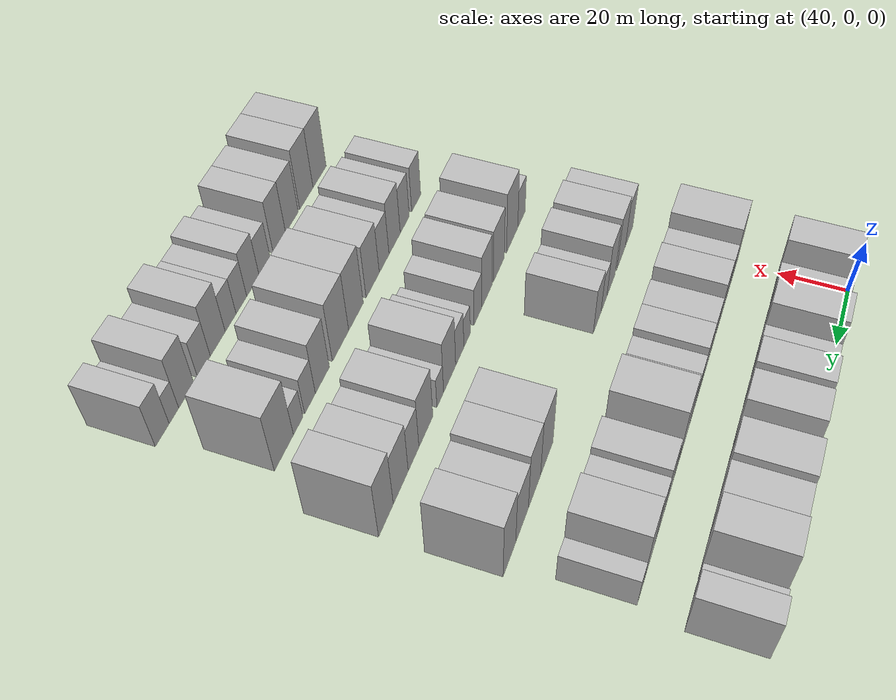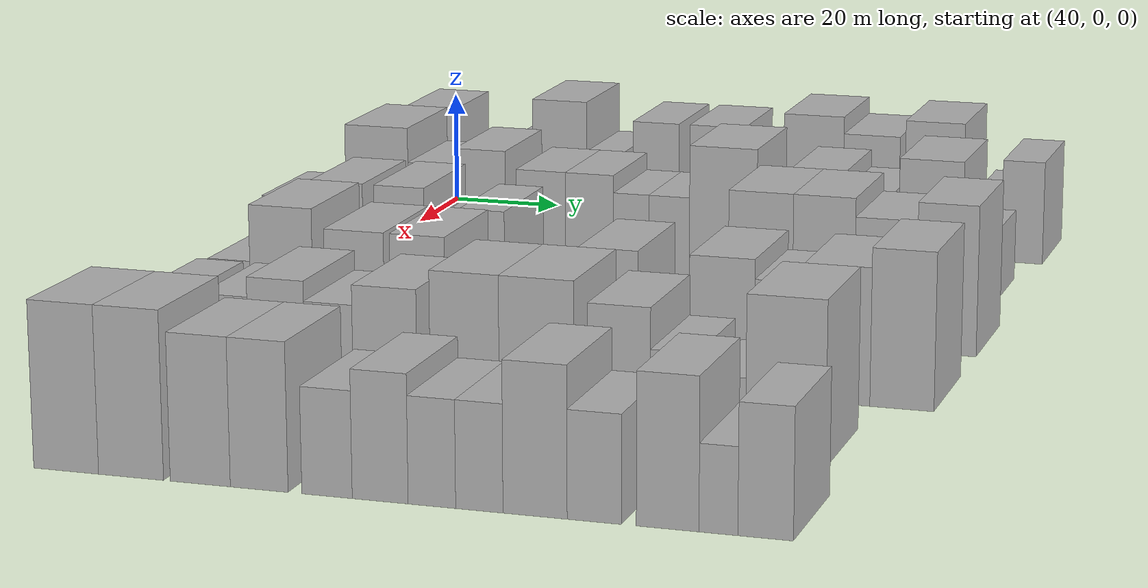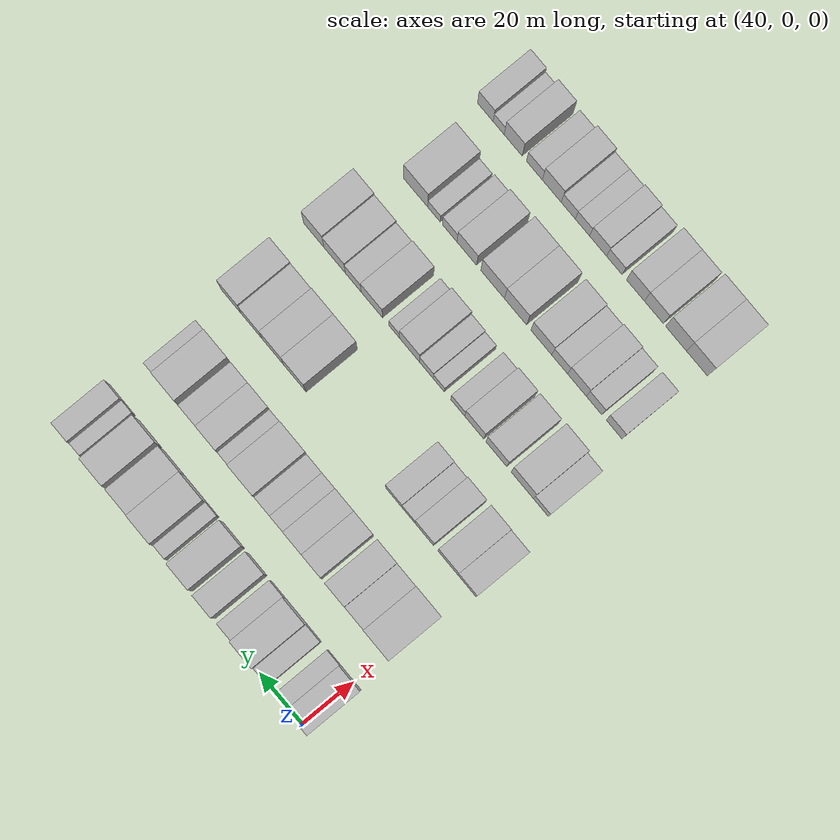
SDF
<sdf version="1.6">
 <world name="default">
  <model name="building_61">
   <static>1</static>
   <pose>50.0000 1.5349 0 0.000000 0.000000 0.000000</pose>
   <link name="link">
    <pose>0 0 10.50 0 0 0</pose>
    <collision name="collision"><geometry><box><size>20.0000 9.6845 21.0000</size></box></geometry></collision>
    <visual name="visual">
     <cast_shadows>0</cast_shadows>
     <geometry><box><size>20.0000 9.6845 21.0000</size></box></geometry>
     <material>
      <script>
       <uri>model://HANNAS_wall/materials/scripts</uri>
       <uri>model://HANNAS_wall/materials/textures</uri>
       <name>vrc/HANNAS_wall</name>
      </script>
     </material>
    </visual>
   </link>
  </model>
  <model name="building_62">
   <static>1</static>
   <pose>50.0000 9.2996 0 0.000000 0.000000 0.000000</pose>
   <link name="link">
    <pose>0 0 6.00 0 0 0</pose>
    <collision name="collision"><geometry><box><size>20.0000 5.8450 12.0000</size></box></geometry></collision>
    <visual name="visual">
     <cast_shadows>0</cast_shadows>
     <geometry><box><size>20.0000 5.8450 12.0000</size></box></geometry>
     <material>
      <script>
       <uri>model://HANNAS_wall/materials/scripts</uri>
       <uri>model://HANNAS_wall/materials/textures</uri>
       <name>vrc/HANNAS_wall</name>
      </script>
     </material>
    </visual>
   </link>
  </model>
  <model name="building_63">
   <static>1</static>
   <pose>50.0000 18.5342 0 0.000000 0.000000 0.000000</pose>
   <link name="link">
    <pose>0 0 7.50 0 0 0</pose>
    <collision name="collision"><geometry><box><size>20.0000 6.6242 15.0000</size></box></geometry></collision>
    <visual name="visual">
     <cast_shadows>0</cast_shadows>
     <geometry><box><size>20.0000 6.6242 15.0000</size></box></geometry>
     <material>
      <script>
       <uri>model://HANNAS_wall/materials/scripts</uri>
       <uri>model://HANNAS_wall/materials/textures</uri>
       <name>vrc/HANNAS_wall</name>
      </script>
     </material>
    </visual>
   </link>
  </model>
  <model name="building_64">
   <static>1</static>
   <pose>50.0000 26.9596 0 0.000000 0.000000 0.000000</pose>
   <link name="link">
    <pose>0 0 12.00 0 0 0</pose>
    <collision name="collision"><geometry><box><size>20.0000 10.2266 24.0000</size></box></geometry></collision>
    <visual name="visual">
     <cast_shadows>0</cast_shadows>
     <geometry><box><size>20.0000 10.2266 24.0000</size></box></geometry>
     <material>
      <script>
       <uri>model://HANNAS_wall/materials/scripts</uri>
       <uri>model://HANNAS_wall/materials/textures</uri>
       <name>vrc/HANNAS_wall</name>
      </script>
     </material>
    </visual>
   </link>
  </model>
  <model name="building_65">
   <static>1</static>
   <pose>50.0000 35.4336 0 0.000000 0.000000 0.000000</pose>
   <link name="link">
    <pose>0 0 7.50 0 0 0</pose>
    <collision name="collision"><geometry><box><size>20.0000 6.7215 15.0000</size></box></geometry></collision>
    <visual name="visual">
     <cast_shadows>0</cast_shadows>
     <geometry><box><size>20.0000 6.7215 15.0000</size></box></geometry>
     <material>
      <script>
       <uri>model://HANNAS_wall/materials/scripts</uri>
       <uri>model://HANNAS_wall/materials/textures</uri>
       <name>vrc/HANNAS_wall</name>
      </script>
     </material>
    </visual>
   </link>
  </model>
  <model name="building_66">
   <static>1</static>
   <pose>50.0000 45.1066 0 0.000000 0.000000 0.000000</pose>
   <link name="link">
    <pose>0 0 10.50 0 0 0</pose>
    <collision name="collision"><geometry><box><size>20.0000 8.6244 21.0000</size></box></geometry></collision>
    <visual name="visual">
     <cast_shadows>0</cast_shadows>
     <geometry><box><size>20.0000 8.6244 21.0000</size></box></geometry>
     <material>
      <script>
       <uri>model://HANNAS_wall/materials/scripts</uri>
       <uri>model://HANNAS_wall/materials/textures</uri>
       <name>vrc/HANNAS_wall</name>
      </script>
     </material>
    </visual>
   </link>
  </model>
  <model name="building_67">
   <static>1</static>
   <pose>50.0000 56.4293 0 0.000000 0.000000 0.000000</pose>
   <link name="link">
    <pose>0 0 10.50 0 0 0</pose>
    <collision name="collision"><geometry><box><size>20.0000 10.0211 21.0000</size></box></geometry></collision>
    <visual name="visual">
     <cast_shadows>0</cast_shadows>
     <geometry><box><size>20.0000 10.0211 21.0000</size></box></geometry>
     <material>
      <script>
       <uri>model://HANNAS_wall/materials/scripts</uri>
       <uri>model://HANNAS_wall/materials/textures</uri>
       <name>vrc/HANNAS_wall</name>
      </script>
     </material>
    </visual>
   </link>
  </model>
  <model name="building_68">
   <static>1</static>
   <pose>50.0000 66.0539 0 0.000000 0.000000 0.000000</pose>
   <link name="link">
    <pose>0 0 6.00 0 0 0</pose>
    <collision name="collision"><geometry><box><size>20.0000 5.2282 12.0000</size></box></geometry></collision>
    <visual name="visual">
     <cast_shadows>0</cast_shadows>
     <geometry><box><size>20.0000 5.2282 12.0000</size></box></geometry>
     <material>
      <script>
       <uri>model://HANNAS_wall/materials/scripts</uri>
       <uri>model://HANNAS_wall/materials/textures</uri>
       <name>vrc/HANNAS_wall</name>
      </script>
     </material>
    </visual>
   </link>
  </model>
  <model name="building_69">
   <static>1</static>
   <pose>50.0000 74.1038 0 0.000000 0.000000 0.000000</pose>
   <link name="link">
    <pose>0 0 12.00 0 0 0</pose>
    <collision name="collision"><geometry><box><size>20.0000 10.8714 24.0000</size></box></geometry></collision>
    <visual name="visual">
     <cast_shadows>0</cast_shadows>
     <geometry><box><size>20.0000 10.8714 24.0000</size></box></geometry>
     <material>
      <script>
       <uri>model://HANNAS_wall/materials/scripts</uri>
       <uri>model://HANNAS_wall/materials/textures</uri>
       <name>vrc/HANNAS_wall</name>
      </script>
     </material>
    </visual>
   </link>
  </model>
  <model name="building_70">
   <static>1</static>
   <pose>50.0000 84.5652 0 0.000000 0.000000 0.000000</pose>
   <link name="link">
    <pose>0 0 10.50 0 0 0</pose>
    <collision name="collision"><geometry><box><size>20.0000 10.0514 21.0000</size></box></geometry></collision>
    <visual name="visual">
     <cast_shadows>0</cast_shadows>
     <geometry><box><size>20.0000 10.0514 21.0000</size></box></geometry>
     <material>
      <script>
       <uri>model://HANNAS_wall/materials/scripts</uri>
       <uri>model://HANNAS_wall/materials/textures</uri>
       <name>vrc/HANNAS_wall</name>
      </script>
     </material>
    </visual>
   </link>
  </model>
  <model name="building_71">
   <static>1</static>
   <pose>50.0000 95.8298 0 0.000000 0.000000 0.000000</pose>
   <link name="link">
    <pose>0 0 12.00 0 0 0</pose>
    <collision name="collision"><geometry><box><size>20.0000 10.4778 24.0000</size></box></geometry></collision>
    <visual name="visual">
     <cast_shadows>0</cast_shadows>
     <geometry><box><size>20.0000 10.4778 24.0000</size></box></geometry>
     <material>
      <script>
       <uri>model://HANNAS_wall/materials/scripts</uri>
       <uri>model://HANNAS_wall/materials/textures</uri>
       <name>vrc/HANNAS_wall</name>
      </script>
     </material>
    </visual>
   </link>
  </model>
  <model name="building_72">
   <static>1</static>
   <pose>50.0000 105.4880 0 0.000000 0.000000 0.000000</pose>
   <link name="link">
    <pose>0 0 6.00 0 0 0</pose>
    <collision name="collision"><geometry><box><size>20.0000 4.8387 12.0000</size></box></geometry></collision>
    <visual name="visual">
     <cast_shadows>0</cast_shadows>
     <geometry><box><size>20.0000 4.8387 12.0000</size></box></geometry>
     <material>
      <script>
       <uri>model://HANNAS_wall/materials/scripts</uri>
       <uri>model://HANNAS_wall/materials/textures</uri>
       <name>vrc/HANNAS_wall</name>
      </script>
     </material>
    </visual>
   </link>
  </model>
  <model name="building_73">
   <static>1</static>
   <pose>50.0000 111.5467 0 0.000000 0.000000 0.000000</pose>
   <link name="link">
    <pose>0 0 9.00 0 0 0</pose>
    <collision name="collision"><geometry><box><size>20.0000 7.2786 18.0000</size></box></geometry></collision>
    <visual name="visual">
     <cast_shadows>0</cast_shadows>
     <geometry><box><size>20.0000 7.2786 18.0000</size></box></geometry>
     <material>
      <script>
       <uri>model://HANNAS_wall/materials/scripts</uri>
       <uri>model://HANNAS_wall/materials/textures</uri>
       <name>vrc/HANNAS_wall</name>
      </script>
     </material>
    </visual>
   </link>
  </model>
  <model name="building_181">
   <static>1</static>
   <pose>82.0000 3.9759 0 0.000000 0.000000 0.000000</pose>
   <link name="link">
    <pose>0 0 12.00 0 0 0</pose>
    <collision name="collision"><geometry><box><size>20.0000 11.5854 24.0000</size></box></geometry></collision>
    <visual name="visual">
     <cast_shadows>0</cast_shadows>
     <geometry><box><size>20.0000 11.5854 24.0000</size></box></geometry>
     <material>
      <script>
       <uri>model://HANNAS_wall/materials/scripts</uri>
       <uri>model://HANNAS_wall/materials/textures</uri>
       <name>vrc/HANNAS_wall</name>
      </script>
     </material>
    </visual>
   </link>
  </model>
  <model name="building_182">
   <static>1</static>
   <pose>82.0000 14.1126 0 0.000000 0.000000 0.000000</pose>
   <link name="link">
    <pose>0 0 9.00 0 0 0</pose>
    <collision name="collision"><geometry><box><size>20.0000 8.6879 18.0000</size></box></geometry></collision>
    <visual name="visual">
     <cast_shadows>0</cast_shadows>
     <geometry><box><size>20.0000 8.6879 18.0000</size></box></geometry>
     <material>
      <script>
       <uri>model://HANNAS_wall/materials/scripts</uri>
       <uri>model://HANNAS_wall/materials/textures</uri>
       <name>vrc/HANNAS_wall</name>
      </script>
     </material>
    </visual>
   </link>
  </model>
  <model name="building_183">
   <static>1</static>
   <pose>82.0000 22.9989 0 0.000000 0.000000 0.000000</pose>
   <link name="link">
    <pose>0 0 10.50 0 0 0</pose>
    <collision name="collision"><geometry><box><size>20.0000 9.0847 21.0000</size></box></geometry></collision>
    <visual name="visual">
     <cast_shadows>0</cast_shadows>
     <geometry><box><size>20.0000 9.0847 21.0000</size></box></geometry>
     <material>
      <script>
       <uri>model://HANNAS_wall/materials/scripts</uri>
       <uri>model://HANNAS_wall/materials/textures</uri>
       <name>vrc/HANNAS_wall</name>
      </script>
     </material>
    </visual>
   </link>
  </model>
  <model name="building_184">
   <static>1</static>
   <pose>82.0000 33.9678 0 0.000000 0.000000 0.000000</pose>
   <link name="link">
    <pose>0 0 9.00 0 0 0</pose>
    <collision name="collision"><geometry><box><size>20.0000 8.8531 18.0000</size></box></geometry></collision>
    <visual name="visual">
     <cast_shadows>0</cast_shadows>
     <geometry><box><size>20.0000 8.8531 18.0000</size></box></geometry>
     <material>
      <script>
       <uri>model://HANNAS_wall/materials/scripts</uri>
       <uri>model://HANNAS_wall/materials/textures</uri>
       <name>vrc/HANNAS_wall</name>
      </script>
     </material>
    </visual>
   </link>
  </model>
  <model name="building_185">
   <static>1</static>
   <pose>82.0000 42.7014 0 0.000000 0.000000 0.000000</pose>
   <link name="link">
    <pose>0 0 9.00 0 0 0</pose>
    <collision name="collision"><geometry><box><size>20.0000 8.6142 18.0000</size></box></geometry></collision>
    <visual name="visual">
     <cast_shadows>0</cast_shadows>
     <geometry><box><size>20.0000 8.6142 18.0000</size></box></geometry>
     <material>
      <script>
       <uri>model://HANNAS_wall/materials/scripts</uri>
       <uri>model://HANNAS_wall/materials/textures</uri>
       <name>vrc/HANNAS_wall</name>
      </script>
     </material>
    </visual>
   </link>
  </model>
  <model name="building_186">
   <static>1</static>
   <pose>82.0000 50.1240 0 0.000000 0.000000 0.000000</pose>
   <link name="link">
    <pose>0 0 7.50 0 0 0</pose>
    <collision name="collision"><geometry><box><size>20.0000 6.2309 15.0000</size></box></geometry></collision>
    <visual name="visual">
     <cast_shadows>0</cast_shadows>
     <geometry><box><size>20.0000 6.2309 15.0000</size></box></geometry>
     <material>
      <script>
       <uri>model://HANNAS_wall/materials/scripts</uri>
       <uri>model://HANNAS_wall/materials/textures</uri>
       <name>vrc/HANNAS_wall</name>
      </script>
     </material>
    </visual>
   </link>
  </model>
  <model name="building_187">
   <static>1</static>
   <pose>82.0000 56.8311 0 0.000000 0.000000 0.000000</pose>
   <link name="link">
    <pose>0 0 7.50 0 0 0</pose>
    <collision name="collision"><geometry><box><size>20.0000 7.1833 15.0000</size></box></geometry></collision>
    <visual name="visual">
     <cast_shadows>0</cast_shadows>
     <geometry><box><size>20.0000 7.1833 15.0000</size></box></geometry>
     <material>
      <script>
       <uri>model://HANNAS_wall/materials/scripts</uri>
       <uri>model://HANNAS_wall/materials/textures</uri>
       <name>vrc/HANNAS_wall</name>
      </script>
     </material>
    </visual>
   </link>
  </model>
  <model name="building_188">
   <static>1</static>
   <pose>82.0000 66.2970 0 0.000000 0.000000 0.000000</pose>
   <link name="link">
    <pose>0 0 12.00 0 0 0</pose>
    <collision name="collision"><geometry><box><size>20.0000 11.7486 24.0000</size></box></geometry></collision>
    <visual name="visual">
     <cast_shadows>0</cast_shadows>
     <geometry><box><size>20.0000 11.7486 24.0000</size></box></geometry>
     <material>
      <script>
       <uri>model://HANNAS_wall/materials/scripts</uri>
       <uri>model://HANNAS_wall/materials/textures</uri>
       <name>vrc/HANNAS_wall</name>
      </script>
     </material>
    </visual>
   </link>
  </model>
  <model name="building_189">
   <static>1</static>
   <pose>82.0000 74.9972 0 0.000000 0.000000 0.000000</pose>
   <link name="link">
    <pose>0 0 6.00 0 0 0</pose>
    <collision name="collision"><geometry><box><size>20.0000 5.6519 12.0000</size></box></geometry></collision>
    <visual name="visual">
     <cast_shadows>0</cast_shadows>
     <geometry><box><size>20.0000 5.6519 12.0000</size></box></geometry>
     <material>
      <script>
       <uri>model://HANNAS_wall/materials/scripts</uri>
       <uri>model://HANNAS_wall/materials/textures</uri>
       <name>vrc/HANNAS_wall</name>
      </script>
     </material>
    </visual>
   </link>
  </model>
  <model name="building_190">
   <static>1</static>
   <pose>82.0000 82.5000 0 0.000000 0.000000 0.000000</pose>
   <link name="link">
    <pose>0 0 10.50 0 0 0</pose>
    <collision name="collision"><geometry><box><size>20.0000 9.3537 21.0000</size></box></geometry></collision>
    <visual name="visual">
     <cast_shadows>0</cast_shadows>
     <geometry><box><size>20.0000 9.3537 21.0000</size></box></geometry>
     <material>
      <script>
       <uri>model://HANNAS_wall/materials/scripts</uri>
       <uri>model://HANNAS_wall/materials/textures</uri>
       <name>vrc/HANNAS_wall</name>
      </script>
     </material>
    </visual>
   </link>
  </model>
  <model name="building_191">
   <static>1</static>
   <pose>82.0000 91.3066 0 0.000000 0.000000 0.000000</pose>
   <link name="link">
    <pose>0 0 9.00 0 0 0</pose>
    <collision name="collision"><geometry><box><size>20.0000 8.2596 18.0000</size></box></geometry></collision>
    <visual name="visual">
     <cast_shadows>0</cast_shadows>
     <geometry><box><size>20.0000 8.2596 18.0000</size></box></geometry>
     <material>
      <script>
       <uri>model://HANNAS_wall/materials/scripts</uri>
       <uri>model://HANNAS_wall/materials/textures</uri>
       <name>vrc/HANNAS_wall</name>
      </script>
     </material>
    </visual>
   </link>
  </model>
  <model name="building_192">
   <static>1</static>
   <pose>82.0000 101.8330 0 0.000000 0.000000 0.000000</pose>
   <link name="link">
    <pose>0 0 12.00 0 0 0</pose>
    <collision name="collision"><geometry><box><size>20.0000 10.7932 24.0000</size></box></geometry></collision>
    <visual name="visual">
     <cast_shadows>0</cast_shadows>
     <geometry><box><size>20.0000 10.7932 24.0000</size></box></geometry>
     <material>
      <script>
       <uri>model://HANNAS_wall/materials/scripts</uri>
       <uri>model://HANNAS_wall/materials/textures</uri>
       <name>vrc/HANNAS_wall</name>
      </script>
     </material>
    </visual>
   </link>
  </model>
  <model name="building_193">
   <static>1</static>
   <pose>82.0000 109.8314 0 0.000000 0.000000 0.000000</pose>
   <link name="link">
    <pose>0 0 6.00 0 0 0</pose>
    <collision name="collision"><geometry><box><size>20.0000 5.2037 12.0000</size></box></geometry></collision>
    <visual name="visual">
     <cast_shadows>0</cast_shadows>
     <geometry><box><size>20.0000 5.2037 12.0000</size></box></geometry>
     <material>
      <script>
       <uri>model://HANNAS_wall/materials/scripts</uri>
       <uri>model://HANNAS_wall/materials/textures</uri>
       <name>vrc/HANNAS_wall</name>
      </script>
     </material>
    </visual>
   </link>
  </model>
  <model name="building_303">
   <static>1</static>
   <pose>114.0000 0.4005 0 0.000000 0.000000 0.000000</pose>
   <link name="link">
    <pose>0 0 9.00 0 0 0</pose>
    <collision name="collision"><geometry><box><size>20.0000 8.4731 18.0000</size></box></geometry></collision>
    <visual name="visual">
     <cast_shadows>0</cast_shadows>
     <geometry><box><size>20.0000 8.4731 18.0000</size></box></geometry>
     <material>
      <script>
       <uri>model://HANNAS_wall/materials/scripts</uri>
       <uri>model://HANNAS_wall/materials/textures</uri>
       <name>vrc/HANNAS_wall</name>
      </script>
     </material>
    </visual>
   </link>
  </model>
  <model name="building_304">
   <static>1</static>
   <pose>114.0000 9.2841 0 0.000000 0.000000 0.000000</pose>
   <link name="link">
    <pose>0 0 10.50 0 0 0</pose>
    <collision name="collision"><geometry><box><size>20.0000 9.2941 21.0000</size></box></geometry></collision>
    <visual name="visual">
     <cast_shadows>0</cast_shadows>
     <geometry><box><size>20.0000 9.2941 21.0000</size></box></geometry>
     <material>
      <script>
       <uri>model://HANNAS_wall/materials/scripts</uri>
       <uri>model://HANNAS_wall/materials/textures</uri>
       <name>vrc/HANNAS_wall</name>
      </script>
     </material>
    </visual>
   </link>
  </model>
  <model name="building_305">
   <static>1</static>
   <pose>114.0000 20.2751 0 0.000000 0.000000 0.000000</pose>
   <link name="link">
    <pose>0 0 10.50 0 0 0</pose>
    <collision name="collision"><geometry><box><size>20.0000 8.6879 21.0000</size></box></geometry></collision>
    <visual name="visual">
     <cast_shadows>0</cast_shadows>
     <geometry><box><size>20.0000 8.6879 21.0000</size></box></geometry>
     <material>
      <script>
       <uri>model://HANNAS_wall/materials/scripts</uri>
       <uri>model://HANNAS_wall/materials/textures</uri>
       <name>vrc/HANNAS_wall</name>
      </script>
     </material>
    </visual>
   </link>
  </model>
  <model name="building_306">
   <static>1</static>
   <pose>114.0000 27.6384 0 0.000000 0.000000 0.000000</pose>
   <link name="link">
    <pose>0 0 7.50 0 0 0</pose>
    <collision name="collision"><geometry><box><size>20.0000 6.0388 15.0000</size></box></geometry></collision>
    <visual name="visual">
     <cast_shadows>0</cast_shadows>
     <geometry><box><size>20.0000 6.0388 15.0000</size></box></geometry>
     <material>
      <script>
       <uri>model://HANNAS_wall/materials/scripts</uri>
       <uri>model://HANNAS_wall/materials/textures</uri>
       <name>vrc/HANNAS_wall</name>
      </script>
     </material>
    </visual>
   </link>
  </model>
  <model name="building_307">
   <static>1</static>
   <pose>114.0000 34.5200 0 0.000000 0.000000 0.000000</pose>
   <link name="link">
    <pose>0 0 9.00 0 0 0</pose>
    <collision name="collision"><geometry><box><size>20.0000 7.7243 18.0000</size></box></geometry></collision>
    <visual name="visual">
     <cast_shadows>0</cast_shadows>
     <geometry><box><size>20.0000 7.7243 18.0000</size></box></geometry>
     <material>
      <script>
       <uri>model://HANNAS_wall/materials/scripts</uri>
       <uri>model://HANNAS_wall/materials/textures</uri>
       <name>vrc/HANNAS_wall</name>
      </script>
     </material>
    </visual>
   </link>
  </model>
  <model name="building_308">
   <static>1</static>
   <pose>114.0000 81.1330 0 0.000000 0.000000 0.000000</pose>
   <link name="link">
    <pose>0 0 12.00 0 0 0</pose>
    <collision name="collision"><geometry><box><size>20.0000 10.5006 24.0000</size></box></geometry></collision>
    <visual name="visual">
     <cast_shadows>0</cast_shadows>
     <geometry><box><size>20.0000 10.5006 24.0000</size></box></geometry>
     <material>
      <script>
       <uri>model://HANNAS_wall/materials/scripts</uri>
       <uri>model://HANNAS_wall/materials/textures</uri>
       <name>vrc/HANNAS_wall</name>
      </script>
     </material>
    </visual>
   </link>
  </model>
  <model name="building_309">
   <static>1</static>
   <pose>114.0000 91.3817 0 0.000000 0.000000 0.000000</pose>
   <link name="link">
    <pose>0 0 12.00 0 0 0</pose>
    <collision name="collision"><geometry><box><size>20.0000 9.9969 24.0000</size></box></geometry></collision>
    <visual name="visual">
     <cast_shadows>0</cast_shadows>
     <geometry><box><size>20.0000 9.9969 24.0000</size></box></geometry>
     <material>
      <script>
       <uri>model://HANNAS_wall/materials/scripts</uri>
       <uri>model://HANNAS_wall/materials/textures</uri>
       <name>vrc/HANNAS_wall</name>
      </script>
     </material>
    </visual>
   </link>
  </model>
  <model name="building_310">
   <static>1</static>
   <pose>114.0000 101.3374 0 0.000000 0.000000 0.000000</pose>
   <link name="link">
    <pose>0 0 10.50 0 0 0</pose>
    <collision name="collision"><geometry><box><size>20.0000 9.9145 21.0000</size></box></geometry></collision>
    <visual name="visual">
     <cast_shadows>0</cast_shadows>
     <geometry><box><size>20.0000 9.9145 21.0000</size></box></geometry>
     <material>
      <script>
       <uri>model://HANNAS_wall/materials/scripts</uri>
       <uri>model://HANNAS_wall/materials/textures</uri>
       <name>vrc/HANNAS_wall</name>
      </script>
     </material>
    </visual>
   </link>
  </model>
  <model name="building_311">
   <static>1</static>
   <pose>114.0000 111.0970 0 0.000000 0.000000 0.000000</pose>
   <link name="link">
    <pose>0 0 12.00 0 0 0</pose>
    <collision name="collision"><geometry><box><size>20.0000 9.6047 24.0000</size></box></geometry></collision>
    <visual name="visual">
     <cast_shadows>0</cast_shadows>
     <geometry><box><size>20.0000 9.6047 24.0000</size></box></geometry>
     <material>
      <script>
       <uri>model://HANNAS_wall/materials/scripts</uri>
       <uri>model://HANNAS_wall/materials/textures</uri>
       <name>vrc/HANNAS_wall</name>
      </script>
     </material>
    </visual>
   </link>
  </model>
  <model name="building_423">
   <static>1</static>
   <pose>146.0000 4.2211 0 0.000000 0.000000 0.000000</pose>
   <link name="link">
    <pose>0 0 7.50 0 0 0</pose>
    <collision name="collision"><geometry><box><size>20.0000 6.9991 15.0000</size></box></geometry></collision>
    <visual name="visual">
     <cast_shadows>0</cast_shadows>
     <geometry><box><size>20.0000 6.9991 15.0000</size></box></geometry>
     <material>
      <script>
       <uri>model://HANNAS_wall/materials/scripts</uri>
       <uri>model://HANNAS_wall/materials/textures</uri>
       <name>vrc/HANNAS_wall</name>
      </script>
     </material>
    </visual>
   </link>
  </model>
  <model name="building_424">
   <static>1</static>
   <pose>146.0000 12.9334 0 0.000000 0.000000 0.000000</pose>
   <link name="link">
    <pose>0 0 12.00 0 0 0</pose>
    <collision name="collision"><geometry><box><size>20.0000 10.4256 24.0000</size></box></geometry></collision>
    <visual name="visual">
     <cast_shadows>0</cast_shadows>
     <geometry><box><size>20.0000 10.4256 24.0000</size></box></geometry>
     <material>
      <script>
       <uri>model://HANNAS_wall/materials/scripts</uri>
       <uri>model://HANNAS_wall/materials/textures</uri>
       <name>vrc/HANNAS_wall</name>
      </script>
     </material>
    </visual>
   </link>
  </model>
  <model name="building_425">
   <static>1</static>
   <pose>146.0000 25.0327 0 0.000000 0.000000 0.000000</pose>
   <link name="link">
    <pose>0 0 10.50 0 0 0</pose>
    <collision name="collision"><geometry><box><size>20.0000 9.7730 21.0000</size></box></geometry></collision>
    <visual name="visual">
     <cast_shadows>0</cast_shadows>
     <geometry><box><size>20.0000 9.7730 21.0000</size></box></geometry>
     <material>
      <script>
       <uri>model://HANNAS_wall/materials/scripts</uri>
       <uri>model://HANNAS_wall/materials/textures</uri>
       <name>vrc/HANNAS_wall</name>
      </script>
     </material>
    </visual>
   </link>
  </model>
  <model name="building_426">
   <static>1</static>
   <pose>146.0000 35.3805 0 0.000000 0.000000 0.000000</pose>
   <link name="link">
    <pose>0 0 10.50 0 0 0</pose>
    <collision name="collision"><geometry><box><size>20.0000 8.9226 21.0000</size></box></geometry></collision>
    <visual name="visual">
     <cast_shadows>0</cast_shadows>
     <geometry><box><size>20.0000 8.9226 21.0000</size></box></geometry>
     <material>
      <script>
       <uri>model://HANNAS_wall/materials/scripts</uri>
       <uri>model://HANNAS_wall/materials/textures</uri>
       <name>vrc/HANNAS_wall</name>
      </script>
     </material>
    </visual>
   </link>
  </model>
  <model name="building_427">
   <static>1</static>
   <pose>146.0000 43.1481 0 0.000000 0.000000 0.000000</pose>
   <link name="link">
    <pose>0 0 7.50 0 0 0</pose>
    <collision name="collision"><geometry><box><size>20.0000 6.6127 15.0000</size></box></geometry></collision>
    <visual name="visual">
     <cast_shadows>0</cast_shadows>
     <geometry><box><size>20.0000 6.6127 15.0000</size></box></geometry>
     <material>
      <script>
       <uri>model://HANNAS_wall/materials/scripts</uri>
       <uri>model://HANNAS_wall/materials/textures</uri>
       <name>vrc/HANNAS_wall</name>
      </script>
     </material>
    </visual>
   </link>
  </model>
  <model name="building_428">
   <static>1</static>
   <pose>146.0000 52.0782 0 0.000000 0.000000 0.000000</pose>
   <link name="link">
    <pose>0 0 6.00 0 0 0</pose>
    <collision name="collision"><geometry><box><size>20.0000 5.2476 12.0000</size></box></geometry></collision>
    <visual name="visual">
     <cast_shadows>0</cast_shadows>
     <geometry><box><size>20.0000 5.2476 12.0000</size></box></geometry>
     <material>
      <script>
       <uri>model://HANNAS_wall/materials/scripts</uri>
       <uri>model://HANNAS_wall/materials/textures</uri>
       <name>vrc/HANNAS_wall</name>
      </script>
     </material>
    </visual>
   </link>
  </model>
  <model name="building_429">
   <static>1</static>
   <pose>146.0000 57.9363 0 0.000000 0.000000 0.000000</pose>
   <link name="link">
    <pose>0 0 7.50 0 0 0</pose>
    <collision name="collision"><geometry><box><size>20.0000 6.4687 15.0000</size></box></geometry></collision>
    <visual name="visual">
     <cast_shadows>0</cast_shadows>
     <geometry><box><size>20.0000 6.4687 15.0000</size></box></geometry>
     <material>
      <script>
       <uri>model://HANNAS_wall/materials/scripts</uri>
       <uri>model://HANNAS_wall/materials/textures</uri>
       <name>vrc/HANNAS_wall</name>
      </script>
     </material>
    </visual>
   </link>
  </model>
  <model name="building_430">
   <static>1</static>
   <pose>146.0000 65.8366 0 0.000000 0.000000 0.000000</pose>
   <link name="link">
    <pose>0 0 10.50 0 0 0</pose>
    <collision name="collision"><geometry><box><size>20.0000 9.3319 21.0000</size></box></geometry></collision>
    <visual name="visual">
     <cast_shadows>0</cast_shadows>
     <geometry><box><size>20.0000 9.3319 21.0000</size></box></geometry>
     <material>
      <script>
       <uri>model://HANNAS_wall/materials/scripts</uri>
       <uri>model://HANNAS_wall/materials/textures</uri>
       <name>vrc/HANNAS_wall</name>
      </script>
     </material>
    </visual>
   </link>
  </model>
  <model name="building_431">
   <static>1</static>
   <pose>146.0000 73.0211 0 0.000000 0.000000 0.000000</pose>
   <link name="link">
    <pose>0 0 6.00 0 0 0</pose>
    <collision name="collision"><geometry><box><size>20.0000 5.0370 12.0000</size></box></geometry></collision>
    <visual name="visual">
     <cast_shadows>0</cast_shadows>
     <geometry><box><size>20.0000 5.0370 12.0000</size></box></geometry>
     <material>
      <script>
       <uri>model://HANNAS_wall/materials/scripts</uri>
       <uri>model://HANNAS_wall/materials/textures</uri>
       <name>vrc/HANNAS_wall</name>
      </script>
     </material>
    </visual>
   </link>
  </model>
  <model name="building_432">
   <static>1</static>
   <pose>146.0000 83.5653 0 0.000000 0.000000 0.000000</pose>
   <link name="link">
    <pose>0 0 10.50 0 0 0</pose>
    <collision name="collision"><geometry><box><size>20.0000 10.0514 21.0000</size></box></geometry></collision>
    <visual name="visual">
     <cast_shadows>0</cast_shadows>
     <geometry><box><size>20.0000 10.0514 21.0000</size></box></geometry>
     <material>
      <script>
       <uri>model://HANNAS_wall/materials/scripts</uri>
       <uri>model://HANNAS_wall/materials/textures</uri>
       <name>vrc/HANNAS_wall</name>
      </script>
     </material>
    </visual>
   </link>
  </model>
  <model name="building_433">
   <static>1</static>
   <pose>146.0000 92.3463 0 0.000000 0.000000 0.000000</pose>
   <link name="link">
    <pose>0 0 9.00 0 0 0</pose>
    <collision name="collision"><geometry><box><size>20.0000 7.5105 18.0000</size></box></geometry></collision>
    <visual name="visual">
     <cast_shadows>0</cast_shadows>
     <geometry><box><size>20.0000 7.5105 18.0000</size></box></geometry>
     <material>
      <script>
       <uri>model://HANNAS_wall/materials/scripts</uri>
       <uri>model://HANNAS_wall/materials/textures</uri>
       <name>vrc/HANNAS_wall</name>
      </script>
     </material>
    </visual>
   </link>
  </model>
  <model name="building_434">
   <static>1</static>
   <pose>146.0000 101.1585 0 0.000000 0.000000 0.000000</pose>
   <link name="link">
    <pose>0 0 10.50 0 0 0</pose>
    <collision name="collision"><geometry><box><size>20.0000 10.1139 21.0000</size></box></geometry></collision>
    <visual name="visual">
     <cast_shadows>0</cast_shadows>
     <geometry><box><size>20.0000 10.1139 21.0000</size></box></geometry>
     <material>
      <script>
       <uri>model://HANNAS_wall/materials/scripts</uri>
       <uri>model://HANNAS_wall/materials/textures</uri>
       <name>vrc/HANNAS_wall</name>
      </script>
     </material>
    </visual>
   </link>
  </model>
  <model name="building_435">
   <static>1</static>
   <pose>146.0000 111.0273 0 0.000000 0.000000 0.000000</pose>
   <link name="link">
    <pose>0 0 12.00 0 0 0</pose>
    <collision name="collision"><geometry><box><size>20.0000 9.6236 24.0000</size></box></geometry></collision>
    <visual name="visual">
     <cast_shadows>0</cast_shadows>
     <geometry><box><size>20.0000 9.6236 24.0000</size></box></geometry>
     <material>
      <script>
       <uri>model://HANNAS_wall/materials/scripts</uri>
       <uri>model://HANNAS_wall/materials/textures</uri>
       <name>vrc/HANNAS_wall</name>
      </script>
     </material>
    </visual>
   </link>
  </model>
  <model name="building_541">
   <static>1</static>
   <pose>178.0000 8.1719 0 0.000000 0.000000 0.000000</pose>
   <link name="link">
    <pose>0 0 9.00 0 0 0</pose>
    <collision name="collision"><geometry><box><size>20.0000 7.4600 18.0000</size></box></geometry></collision>
    <visual name="visual">
     <cast_shadows>0</cast_shadows>
     <geometry><box><size>20.0000 7.4600 18.0000</size></box></geometry>
     <material>
      <script>
       <uri>model://HANNAS_wall/materials/scripts</uri>
       <uri>model://HANNAS_wall/materials/textures</uri>
       <name>vrc/HANNAS_wall</name>
      </script>
     </material>
    </visual>
   </link>
  </model>
  <model name="building_542">
   <static>1</static>
   <pose>178.0000 17.5179 0 0.000000 0.000000 0.000000</pose>
   <link name="link">
    <pose>0 0 9.00 0 0 0</pose>
    <collision name="collision"><geometry><box><size>20.0000 7.2321 18.0000</size></box></geometry></collision>
    <visual name="visual">
     <cast_shadows>0</cast_shadows>
     <geometry><box><size>20.0000 7.2321 18.0000</size></box></geometry>
     <material>
      <script>
       <uri>model://HANNAS_wall/materials/scripts</uri>
       <uri>model://HANNAS_wall/materials/textures</uri>
       <name>vrc/HANNAS_wall</name>
      </script>
     </material>
    </visual>
   </link>
  </model>
  <model name="building_543">
   <static>1</static>
   <pose>178.0000 25.5314 0 0.000000 0.000000 0.000000</pose>
   <link name="link">
    <pose>0 0 10.50 0 0 0</pose>
    <collision name="collision"><geometry><box><size>20.0000 8.7949 21.0000</size></box></geometry></collision>
    <visual name="visual">
     <cast_shadows>0</cast_shadows>
     <geometry><box><size>20.0000 8.7949 21.0000</size></box></geometry>
     <material>
      <script>
       <uri>model://HANNAS_wall/materials/scripts</uri>
       <uri>model://HANNAS_wall/materials/textures</uri>
       <name>vrc/HANNAS_wall</name>
      </script>
     </material>
    </visual>
   </link>
  </model>
  <model name="building_544">
   <static>1</static>
   <pose>178.0000 33.6590 0 0.000000 0.000000 0.000000</pose>
   <link name="link">
    <pose>0 0 9.00 0 0 0</pose>
    <collision name="collision"><geometry><box><size>20.0000 7.4604 18.0000</size></box></geometry></collision>
    <visual name="visual">
     <cast_shadows>0</cast_shadows>
     <geometry><box><size>20.0000 7.4604 18.0000</size></box></geometry>
     <material>
      <script>
       <uri>model://HANNAS_wall/materials/scripts</uri>
       <uri>model://HANNAS_wall/materials/textures</uri>
       <name>vrc/HANNAS_wall</name>
      </script>
     </material>
    </visual>
   </link>
  </model>
  <model name="building_545">
   <static>1</static>
   <pose>178.0000 42.2921 0 0.000000 0.000000 0.000000</pose>
   <link name="link">
    <pose>0 0 10.50 0 0 0</pose>
    <collision name="collision"><geometry><box><size>20.0000 9.8059 21.0000</size></box></geometry></collision>
    <visual name="visual">
     <cast_shadows>0</cast_shadows>
     <geometry><box><size>20.0000 9.8059 21.0000</size></box></geometry>
     <material>
      <script>
       <uri>model://HANNAS_wall/materials/scripts</uri>
       <uri>model://HANNAS_wall/materials/textures</uri>
       <name>vrc/HANNAS_wall</name>
      </script>
     </material>
    </visual>
   </link>
  </model>
  <model name="building_546">
   <static>1</static>
   <pose>178.0000 54.3991 0 0.000000 0.000000 0.000000</pose>
   <link name="link">
    <pose>0 0 12.00 0 0 0</pose>
    <collision name="collision"><geometry><box><size>20.0000 10.4080 24.0000</size></box></geometry></collision>
    <visual name="visual">
     <cast_shadows>0</cast_shadows>
     <geometry><box><size>20.0000 10.4080 24.0000</size></box></geometry>
     <material>
      <script>
       <uri>model://HANNAS_wall/materials/scripts</uri>
       <uri>model://HANNAS_wall/materials/textures</uri>
       <name>vrc/HANNAS_wall</name>
      </script>
     </material>
    </visual>
   </link>
  </model>
  <model name="building_547">
   <static>1</static>
   <pose>178.0000 65.1819 0 0.000000 0.000000 0.000000</pose>
   <link name="link">
    <pose>0 0 12.00 0 0 0</pose>
    <collision name="collision"><geometry><box><size>20.0000 11.1576 24.0000</size></box></geometry></collision>
    <visual name="visual">
     <cast_shadows>0</cast_shadows>
     <geometry><box><size>20.0000 11.1576 24.0000</size></box></geometry>
     <material>
      <script>
       <uri>model://HANNAS_wall/materials/scripts</uri>
       <uri>model://HANNAS_wall/materials/textures</uri>
       <name>vrc/HANNAS_wall</name>
      </script>
     </material>
    </visual>
   </link>
  </model>
  <model name="building_548">
   <static>1</static>
   <pose>178.0000 77.3670 0 0.000000 0.000000 0.000000</pose>
   <link name="link">
    <pose>0 0 10.50 0 0 0</pose>
    <collision name="collision"><geometry><box><size>20.0000 9.2125 21.0000</size></box></geometry></collision>
    <visual name="visual">
     <cast_shadows>0</cast_shadows>
     <geometry><box><size>20.0000 9.2125 21.0000</size></box></geometry>
     <material>
      <script>
       <uri>model://HANNAS_wall/materials/scripts</uri>
       <uri>model://HANNAS_wall/materials/textures</uri>
       <name>vrc/HANNAS_wall</name>
      </script>
     </material>
    </visual>
   </link>
  </model>
  <model name="building_549">
   <static>1</static>
   <pose>178.0000 85.4042 0 0.000000 0.000000 0.000000</pose>
   <link name="link">
    <pose>0 0 7.50 0 0 0</pose>
    <collision name="collision"><geometry><box><size>20.0000 6.8619 15.0000</size></box></geometry></collision>
    <visual name="visual">
     <cast_shadows>0</cast_shadows>
     <geometry><box><size>20.0000 6.8619 15.0000</size></box></geometry>
     <material>
      <script>
       <uri>model://HANNAS_wall/materials/scripts</uri>
       <uri>model://HANNAS_wall/materials/textures</uri>
       <name>vrc/HANNAS_wall</name>
      </script>
     </material>
    </visual>
   </link>
  </model>
  <model name="building_550">
   <static>1</static>
   <pose>178.0000 92.7978 0 0.000000 0.000000 0.000000</pose>
   <link name="link">
    <pose>0 0 6.00 0 0 0</pose>
    <collision name="collision"><geometry><box><size>20.0000 5.9255 12.0000</size></box></geometry></collision>
    <visual name="visual">
     <cast_shadows>0</cast_shadows>
     <geometry><box><size>20.0000 5.9255 12.0000</size></box></geometry>
     <material>
      <script>
       <uri>model://HANNAS_wall/materials/scripts</uri>
       <uri>model://HANNAS_wall/materials/textures</uri>
       <name>vrc/HANNAS_wall</name>
      </script>
     </material>
    </visual>
   </link>
  </model>
  <model name="building_551">
   <static>1</static>
   <pose>178.0000 101.4874 0 0.000000 0.000000 0.000000</pose>
   <link name="link">
    <pose>0 0 12.00 0 0 0</pose>
    <collision name="collision"><geometry><box><size>20.0000 11.4538 24.0000</size></box></geometry></collision>
    <visual name="visual">
     <cast_shadows>0</cast_shadows>
     <geometry><box><size>20.0000 11.4538 24.0000</size></box></geometry>
     <material>
      <script>
       <uri>model://HANNAS_wall/materials/scripts</uri>
       <uri>model://HANNAS_wall/materials/textures</uri>
       <name>vrc/HANNAS_wall</name>
      </script>
     </material>
    </visual>
   </link>
  </model>
  <model name="building_660">
   <static>1</static>
   <pose>210.0000 7.5199 0 0.000000 0.000000 0.000000</pose>
   <link name="link">
    <pose>0 0 12.00 0 0 0</pose>
    <collision name="collision"><geometry><box><size>20.0000 9.8277 24.0000</size></box></geometry></collision>
    <visual name="visual">
     <cast_shadows>0</cast_shadows>
     <geometry><box><size>20.0000 9.8277 24.0000</size></box></geometry>
     <material>
      <script>
       <uri>model://HANNAS_wall/materials/scripts</uri>
       <uri>model://HANNAS_wall/materials/textures</uri>
       <name>vrc/HANNAS_wall</name>
      </script>
     </material>
    </visual>
   </link>
  </model>
  <model name="building_661">
   <static>1</static>
   <pose>210.0000 17.3031 0 0.000000 0.000000 0.000000</pose>
   <link name="link">
    <pose>0 0 12.00 0 0 0</pose>
    <collision name="collision"><geometry><box><size>20.0000 9.7386 24.0000</size></box></geometry></collision>
    <visual name="visual">
     <cast_shadows>0</cast_shadows>
     <geometry><box><size>20.0000 9.7386 24.0000</size></box></geometry>
     <material>
      <script>
       <uri>model://HANNAS_wall/materials/scripts</uri>
       <uri>model://HANNAS_wall/materials/textures</uri>
       <name>vrc/HANNAS_wall</name>
      </script>
     </material>
    </visual>
   </link>
  </model>
  <model name="building_662">
   <static>1</static>
   <pose>210.0000 27.6153 0 0.000000 0.000000 0.000000</pose>
   <link name="link">
    <pose>0 0 10.50 0 0 0</pose>
    <collision name="collision"><geometry><box><size>20.0000 8.8859 21.0000</size></box></geometry></collision>
    <visual name="visual">
     <cast_shadows>0</cast_shadows>
     <geometry><box><size>20.0000 8.8859 21.0000</size></box></geometry>
     <material>
      <script>
       <uri>model://HANNAS_wall/materials/scripts</uri>
       <uri>model://HANNAS_wall/materials/textures</uri>
       <name>vrc/HANNAS_wall</name>
      </script>
     </material>
    </visual>
   </link>
  </model>
  <model name="building_663">
   <static>1</static>
   <pose>210.0000 36.2828 0 0.000000 0.000000 0.000000</pose>
   <link name="link">
    <pose>0 0 10.50 0 0 0</pose>
    <collision name="collision"><geometry><box><size>20.0000 8.4491 21.0000</size></box></geometry></collision>
    <visual name="visual">
     <cast_shadows>0</cast_shadows>
     <geometry><box><size>20.0000 8.4491 21.0000</size></box></geometry>
     <material>
      <script>
       <uri>model://HANNAS_wall/materials/scripts</uri>
       <uri>model://HANNAS_wall/materials/textures</uri>
       <name>vrc/HANNAS_wall</name>
      </script>
     </material>
    </visual>
   </link>
  </model>
  <model name="building_664">
   <static>1</static>
   <pose>210.0000 46.1451 0 0.000000 0.000000 0.000000</pose>
   <link name="link">
    <pose>0 0 7.50 0 0 0</pose>
    <collision name="collision"><geometry><box><size>20.0000 7.2754 15.0000</size></box></geometry></collision>
    <visual name="visual">
     <cast_shadows>0</cast_shadows>
     <geometry><box><size>20.0000 7.2754 15.0000</size></box></geometry>
     <material>
      <script>
       <uri>model://HANNAS_wall/materials/scripts</uri>
       <uri>model://HANNAS_wall/materials/textures</uri>
       <name>vrc/HANNAS_wall</name>
      </script>
     </material>
    </visual>
   </link>
  </model>
  <model name="building_665">
   <static>1</static>
   <pose>210.0000 53.7797 0 0.000000 0.000000 0.000000</pose>
   <link name="link">
    <pose>0 0 9.00 0 0 0</pose>
    <collision name="collision"><geometry><box><size>20.0000 7.9938 18.0000</size></box></geometry></collision>
    <visual name="visual">
     <cast_shadows>0</cast_shadows>
     <geometry><box><size>20.0000 7.9938 18.0000</size></box></geometry>
     <material>
      <script>
       <uri>model://HANNAS_wall/materials/scripts</uri>
       <uri>model://HANNAS_wall/materials/textures</uri>
       <name>vrc/HANNAS_wall</name>
      </script>
     </material>
    </visual>
   </link>
  </model>
  <model name="building_666">
   <static>1</static>
   <pose>210.0000 61.1406 0 0.000000 0.000000 0.000000</pose>
   <link name="link">
    <pose>0 0 7.50 0 0 0</pose>
    <collision name="collision"><geometry><box><size>20.0000 6.7281 15.0000</size></box></geometry></collision>
    <visual name="visual">
     <cast_shadows>0</cast_shadows>
     <geometry><box><size>20.0000 6.7281 15.0000</size></box></geometry>
     <material>
      <script>
       <uri>model://HANNAS_wall/materials/scripts</uri>
       <uri>model://HANNAS_wall/materials/textures</uri>
       <name>vrc/HANNAS_wall</name>
      </script>
     </material>
    </visual>
   </link>
  </model>
  <model name="building_667">
   <static>1</static>
   <pose>210.0000 67.8255 0 0.000000 0.000000 0.000000</pose>
   <link name="link">
    <pose>0 0 7.50 0 0 0</pose>
    <collision name="collision"><geometry><box><size>20.0000 6.6418 15.0000</size></box></geometry></collision>
    <visual name="visual">
     <cast_shadows>0</cast_shadows>
     <geometry><box><size>20.0000 6.6418 15.0000</size></box></geometry>
     <material>
      <script>
       <uri>model://HANNAS_wall/materials/scripts</uri>
       <uri>model://HANNAS_wall/materials/textures</uri>
       <name>vrc/HANNAS_wall</name>
      </script>
     </material>
    </visual>
   </link>
  </model>
  <model name="building_668">
   <static>1</static>
   <pose>210.0000 75.6010 0 0.000000 0.000000 0.000000</pose>
   <link name="link">
    <pose>0 0 10.50 0 0 0</pose>
    <collision name="collision"><geometry><box><size>20.0000 8.9091 21.0000</size></box></geometry></collision>
    <visual name="visual">
     <cast_shadows>0</cast_shadows>
     <geometry><box><size>20.0000 8.9091 21.0000</size></box></geometry>
     <material>
      <script>
       <uri>model://HANNAS_wall/materials/scripts</uri>
       <uri>model://HANNAS_wall/materials/textures</uri>
       <name>vrc/HANNAS_wall</name>
      </script>
     </material>
    </visual>
   </link>
  </model>
  <model name="building_669">
   <static>1</static>
   <pose>210.0000 83.7977 0 0.000000 0.000000 0.000000</pose>
   <link name="link">
    <pose>0 0 7.50 0 0 0</pose>
    <collision name="collision"><geometry><box><size>20.0000 7.4844 15.0000</size></box></geometry></collision>
    <visual name="visual">
     <cast_shadows>0</cast_shadows>
     <geometry><box><size>20.0000 7.4844 15.0000</size></box></geometry>
     <material>
      <script>
       <uri>model://HANNAS_wall/materials/scripts</uri>
       <uri>model://HANNAS_wall/materials/textures</uri>
       <name>vrc/HANNAS_wall</name>
      </script>
     </material>
    </visual>
   </link>
  </model>
  <model name="building_670">
   <static>1</static>
   <pose>210.0000 93.7870 0 0.000000 0.000000 0.000000</pose>
   <link name="link">
    <pose>0 0 10.50 0 0 0</pose>
    <collision name="collision"><geometry><box><size>20.0000 8.4942 21.0000</size></box></geometry></collision>
    <visual name="visual">
     <cast_shadows>0</cast_shadows>
     <geometry><box><size>20.0000 8.4942 21.0000</size></box></geometry>
     <material>
      <script>
       <uri>model://HANNAS_wall/materials/scripts</uri>
       <uri>model://HANNAS_wall/materials/textures</uri>
       <name>vrc/HANNAS_wall</name>
      </script>
     </material>
    </visual>
   </link>
  </model>
  <model name="building_671">
   <static>1</static>
   <pose>210.0000 100.6463 0 0.000000 0.000000 0.000000</pose>
   <link name="link">
    <pose>0 0 6.00 0 0 0</pose>
    <collision name="collision"><geometry><box><size>20.0000 5.2244 12.0000</size></box></geometry></collision>
    <visual name="visual">
     <cast_shadows>0</cast_shadows>
     <geometry><box><size>20.0000 5.2244 12.0000</size></box></geometry>
     <material>
      <script>
       <uri>model://HANNAS_wall/materials/scripts</uri>
       <uri>model://HANNAS_wall/materials/textures</uri>
       <name>vrc/HANNAS_wall</name>
      </script>
     </material>
    </visual>
   </link>
  </model>
  <model name="building_672">
   <static>1</static>
   <pose>210.0000 106.9629 0 0.000000 0.000000 0.000000</pose>
   <link name="link">
    <pose>0 0 9.00 0 0 0</pose>
    <collision name="collision"><geometry><box><size>20.0000 7.4088 18.0000</size></box></geometry></collision>
    <visual name="visual">
     <cast_shadows>0</cast_shadows>
     <geometry><box><size>20.0000 7.4088 18.0000</size></box></geometry>
     <material>
      <script>
       <uri>model://HANNAS_wall/materials/scripts</uri>
       <uri>model://HANNAS_wall/materials/textures</uri>
       <name>vrc/HANNAS_wall</name>
      </script>
     </material>
    </visual>
   </link>
  </model>
 </world>
</sdf>
